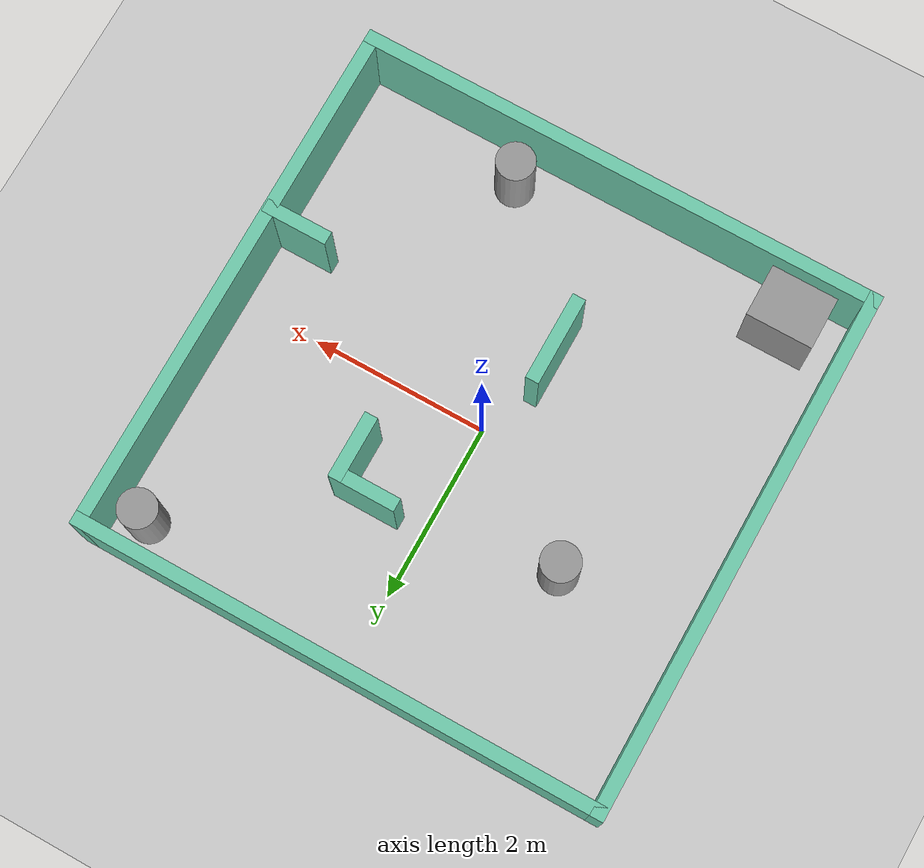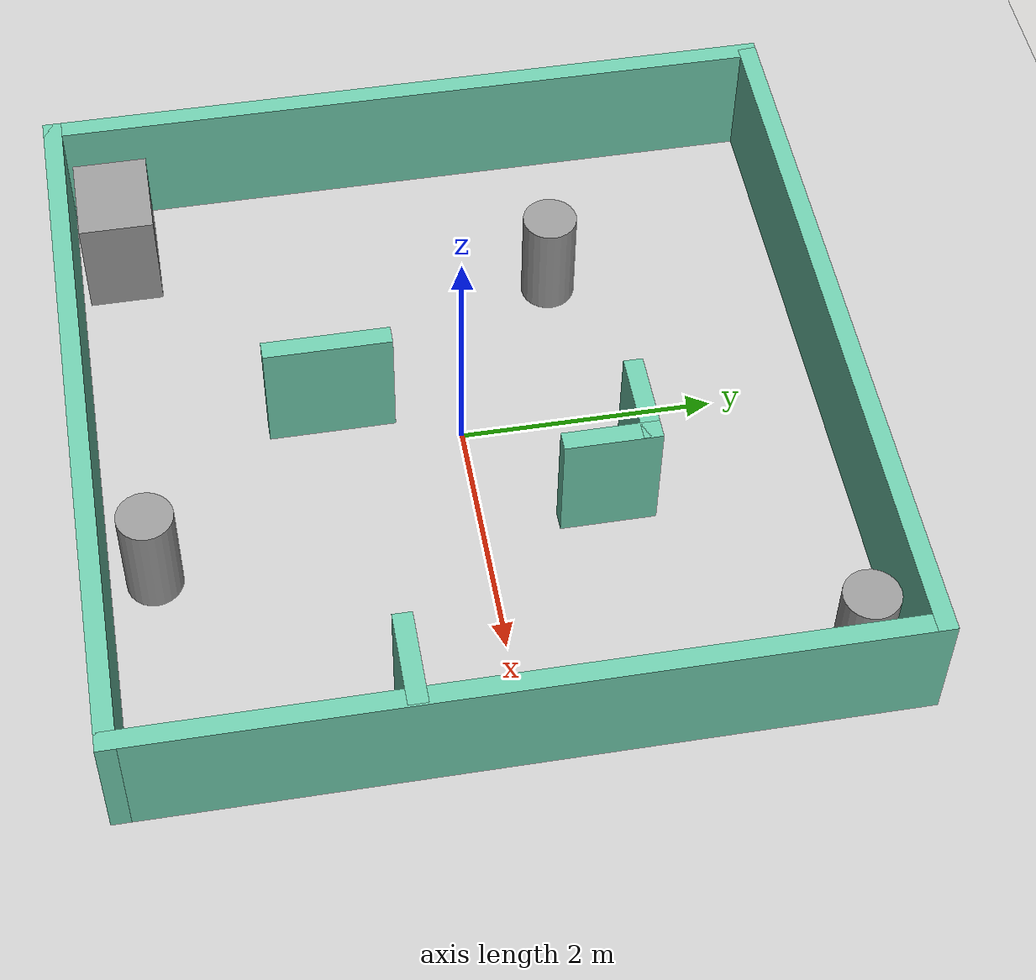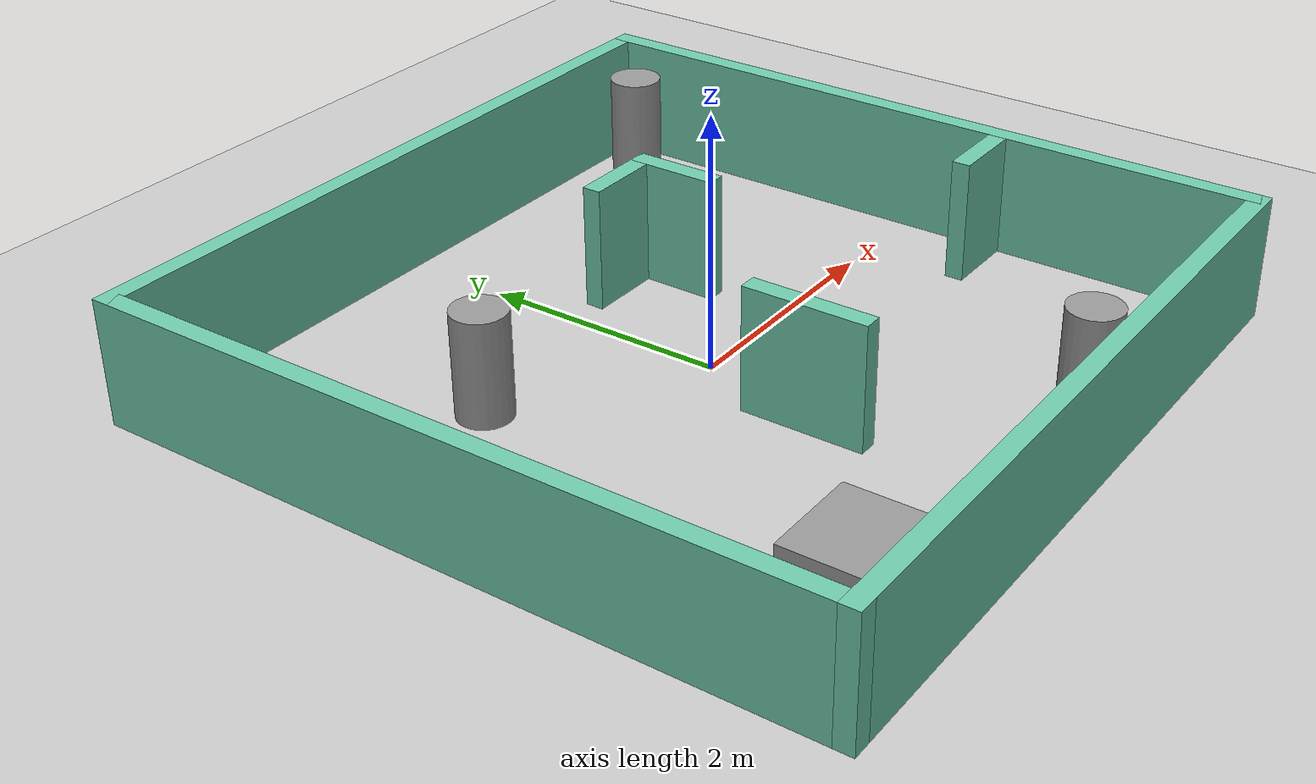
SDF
<sdf version="1.7">
 <world name="default">
  <light name="sun" type="directional">
   <pose>0 0 10 0 -0 0</pose>
   <diffuse>0.8 0.8 0.8 1</diffuse>
   <specular>0.2 0.2 0.2 1</specular>
   <attenuation>
    <range>1000</range>
    <constant>0.9</constant>
    <linear>0.01</linear>
    <quadratic>0.001</quadratic>
   </attenuation>
   <direction>-0.5 0.1 -0.9</direction>
   <spot><inner_angle>0</inner_angle><outer_angle>0</outer_angle><falloff>0</falloff></spot>
  </light>
  <model name="ground_plane">
   <static>1</static>
   <link name="link">
    <collision name="collision">
     <geometry><plane><normal>0 0 1</normal><size>100 100</size></plane></geometry>
     <surface>
      <contact><collide_bitmask>65535</collide_bitmask></contact>
      <friction><ode><mu>100</mu><mu2>50</mu2></ode></friction>
     </surface>
    </collision>
    <visual name="visual">
     <cast_shadows>0</cast_shadows>
     <geometry><plane><normal>0 0 1</normal><size>100 100</size></plane></geometry>
     <material>
      <script><uri>file://media/materials/scripts/gazebo.material</uri><name>Gazebo/Grey</name></script>
     </material>
    </visual>
   </link>
  </model>
  <gravity>0 0 -9.8</gravity>
  <magnetic_field>6e-06 2.3e-05 -4.2e-05</magnetic_field>
  <atmosphere type="adiabatic"/>
  <physics type="ode">
   <max_step_size>0.001</max_step_size>
   <real_time_factor>1</real_time_factor>
   <real_time_update_rate>1000</real_time_update_rate>
  </physics>
  <scene><ambient>0.4 0.4 0.4 1</ambient><background>0.7 0.7 0.7 1</background><shadows>1</shadows></scene>
  <spherical_coordinates>
   <surface_model>EARTH_WGS84</surface_model>
   <latitude_deg>0</latitude_deg>
   <longitude_deg>0</longitude_deg>
   <elevation>0</elevation>
   <heading_deg>0</heading_deg>
  </spherical_coordinates>
  <model name="training_maze">
   <link name="Wall_0">
    <collision name="Wall_0_Collision">
     <geometry><box><size>6 0.15 1</size></box></geometry>
     <pose>0 0 0.5 0 -0 0</pose>
    </collision>
    <visual name="Wall_0_Visual">
     <pose>0 0 0.5 0 -0 0</pose>
     <geometry><box><size>6 0.15 1</size></box></geometry>
     <material>
      <script><uri>file://media/materials/scripts/gazebo.material</uri><name>Gazebo/Grey</name></script>
      <ambient>0.435294 0.796078 0.67451 1</ambient>
     </material>
     <meta><layer>0</layer></meta>
    </visual>
    <pose>0.008707 -2.92551 0 0 -0 3.14159</pose>
   </link>
   <link name="Wall_11">
    <collision name="Wall_11_Collision">
     <geometry><box><size>0.75 0.15 1</size></box></geometry>
     <pose>0 0 0.5 0 -0 0</pose>
    </collision>
    <visual name="Wall_11_Visual">
     <pose>0 0 0.5 0 -0 0</pose>
     <geometry><box><size>0.75 0.15 1</size></box></geometry>
     <material>
      <script><uri>file://media/materials/scripts/gazebo.material</uri><name>Gazebo/Grey</name></script>
      <ambient>0.435294 0.796078 0.67451 1</ambient>
     </material>
     <meta><layer>0</layer></meta>
    </visual>
    <pose>0.633707 1.26704 0 0 -0 0</pose>
   </link>
   <link name="Wall_12">
    <collision name="Wall_12_Collision">
     <geometry><box><size>0.75 0.15 1</size></box></geometry>
     <pose>0 0 0.5 0 -0 0</pose>
    </collision>
    <visual name="Wall_12_Visual">
     <pose>0 0 0.5 0 -0 0</pose>
     <geometry><box><size>0.75 0.15 1</size></box></geometry>
     <material>
      <script><uri>file://media/materials/scripts/gazebo.material</uri><name>Gazebo/Grey</name></script>
      <ambient>0.435294 0.796078 0.67451 1</ambient>
     </material>
     <meta><layer>0</layer></meta>
    </visual>
    <pose>0.938707 0.967037 0 0 0 -1.5708</pose>
   </link>
   <link name="Wall_18">
    <collision name="Wall_18_Collision">
     <geometry><box><size>0.75 0.15 1</size></box></geometry>
     <pose>0 0 0.5 0 -0 0</pose>
    </collision>
    <visual name="Wall_18_Visual">
     <pose>0 0 0.5 0 -0 0</pose>
     <geometry><box><size>0.75 0.15 1</size></box></geometry>
     <material>
      <script><uri>file://media/materials/scripts/gazebo.material</uri><name>Gazebo/Grey</name></script>
      <ambient>0.435294 0.796078 0.67451 1</ambient>
     </material>
     <meta><layer>0</layer></meta>
    </visual>
    <pose>2.61794 -0.80051 0 0 -0 0</pose>
   </link>
   <link name="Wall_3">
    <collision name="Wall_3_Collision">
     <geometry><box><size>6 0.15 1</size></box></geometry>
     <pose>0 0 0.5 0 -0 0</pose>
    </collision>
    <visual name="Wall_3_Visual">
     <pose>0 0 0.5 0 -0 0</pose>
     <geometry><box><size>6 0.15 1</size></box></geometry>
     <material>
      <script><uri>file://media/materials/scripts/gazebo.material</uri><name>Gazebo/Grey</name></script>
      <ambient>0.435294 0.796078 0.67451 1</ambient>
     </material>
     <meta><layer>0</layer></meta>
    </visual>
    <pose>-2.91629 -0.000509 0 0 -0 1.5708</pose>
   </link>
   <link name="Wall_4">
    <collision name="Wall_4_Collision">
     <geometry><box><size>6 0.15 1</size></box></geometry>
     <pose>0 0 0.5 0 -0 0</pose>
    </collision>
    <visual name="Wall_4_Visual">
     <pose>0 0 0.5 0 -0 0</pose>
     <geometry><box><size>6 0.15 1</size></box></geometry>
     <material>
      <script><uri>file://media/materials/scripts/gazebo.material</uri><name>Gazebo/Grey</name></script>
      <ambient>0.435294 0.796078 0.67451 1</ambient>
     </material>
     <meta><layer>0</layer></meta>
    </visual>
    <pose>0.008707 2.92449 0 0 -0 0</pose>
   </link>
   <link name="Wall_5">
    <collision name="Wall_5_Collision">
     <geometry><box><size>6 0.15 1</size></box></geometry>
     <pose>0 0 0.5 0 -0 0</pose>
    </collision>
    <visual name="Wall_5_Visual">
     <pose>0 0 0.5 0 -0 0</pose>
     <geometry><box><size>6 0.15 1</size></box></geometry>
     <material>
      <script><uri>file://media/materials/scripts/gazebo.material</uri><name>Gazebo/Grey</name></script>
      <ambient>0.435294 0.796078 0.67451 1</ambient>
     </material>
     <meta><layer>0</layer></meta>
    </visual>
    <pose>2.93371 -0.000509 0 0 0 -1.5708</pose>
   </link>
   <link name="Wall_9">
    <collision name="Wall_9_Collision">
     <geometry><box><size>1 0.15 1</size></box></geometry>
     <pose>0 0 0.5 0 -0 0</pose>
    </collision>
    <visual name="Wall_9_Visual">
     <pose>0 0 0.5 0 -0 0</pose>
     <geometry><box><size>1 0.15 1</size></box></geometry>
     <material>
      <script><uri>file://media/materials/scripts/gazebo.material</uri><name>Gazebo/Grey</name></script>
      <ambient>0.435294 0.796078 0.67451 1</ambient>
     </material>
     <meta><layer>0</layer></meta>
    </visual>
    <pose>-0.291293 -1.00051 0 0 0 -1.5708</pose>
   </link>
   <static>1</static>
  </model>
  <model name="unit_cylinder_clone">
   <pose>1 -2.51219 0.421965 0 -0 0</pose>
   <link name="link">
    <inertial>
     <mass>1</mass>
     <inertia><ixx>0.145833</ixx><ixy>0</ixy><ixz>0</ixz><iyy>0.145833</iyy><iyz>0</iyz><izz>0.125</izz></inertia>
    </inertial>
    <collision name="collision">
     <geometry><cylinder><radius>0.215827</radius><length>0.843946</length></cylinder></geometry>
    </collision>
    <visual name="visual">
     <geometry><cylinder><radius>0.215827</radius><length>0.843946</length></cylinder></geometry>
     <material>
      <script><name>Gazebo/Grey</name><uri>file://media/materials/scripts/gazebo.material</uri></script>
     </material>
    </visual>
   </link>
  </model>
  <model name="unit_cylinder_clone_0">
   <pose>2.53 2.53 0.421969 0 -0 0</pose>
   <link name="link">
    <inertial>
     <mass>1</mass>
     <inertia><ixx>0.145833</ixx><ixy>0</ixy><ixz>0</ixz><iyy>0.145833</iyy><iyz>0</iyz><izz>0.125</izz></inertia>
    </inertial>
    <collision name="collision">
     <geometry><cylinder><radius>0.215827</radius><length>0.843946</length></cylinder></geometry>
    </collision>
    <visual name="visual">
     <geometry><cylinder><radius>0.215827</radius><length>0.843946</length></cylinder></geometry>
     <material>
      <script><name>Gazebo/Grey</name><uri>file://media/materials/scripts/gazebo.material</uri></script>
     </material>
    </visual>
   </link>
  </model>
  <model name="unit_cylinder_clone_clone">
   <pose>-1.42 0.95 0.421969 0 -0 0</pose>
   <link name="link">
    <inertial>
     <mass>1</mass>
     <inertia><ixx>0.145833</ixx><ixy>0</ixy><ixz>0</ixz><iyy>0.145833</iyy><iyz>0</iyz><izz>0.125</izz></inertia>
    </inertial>
    <collision name="collision">
     <geometry><cylinder><radius>0.215827</radius><length>0.843946</length></cylinder></geometry>
    </collision>
    <visual name="visual">
     <geometry><cylinder><radius>0.215827</radius><length>0.843946</length></cylinder></geometry>
     <material>
      <script><name>Gazebo/Grey</name><uri>file://media/materials/scripts/gazebo.material</uri></script>
     </material>
    </visual>
   </link>
  </model>
  <model name="unit_box">
   <pose>-2.223 -2.49812 0.437461 0 0 -0.000109</pose>
   <link name="link">
    <inertial>
     <mass>1</mass>
     <inertia>
      <ixx>0.166667</ixx>
      <ixy>0</ixy>
      <ixz>0</ixz>
      <iyy>0.166667</iyy>
      <iyz>0</iyz>
      <izz>0.166667</izz>
     </inertia>
    </inertial>
    <collision name="collision">
     <geometry><box><size>0.748982 0.592808 0.874925</size></box></geometry>
    </collision>
    <visual name="visual">
     <geometry><box><size>0.748982 0.592808 0.874925</size></box></geometry>
     <material>
      <script><name>Gazebo/Grey</name><uri>file://media/materials/scripts/gazebo.material</uri></script>
     </material>
    </visual>
   </link>
  </model>
 </world>
</sdf>
